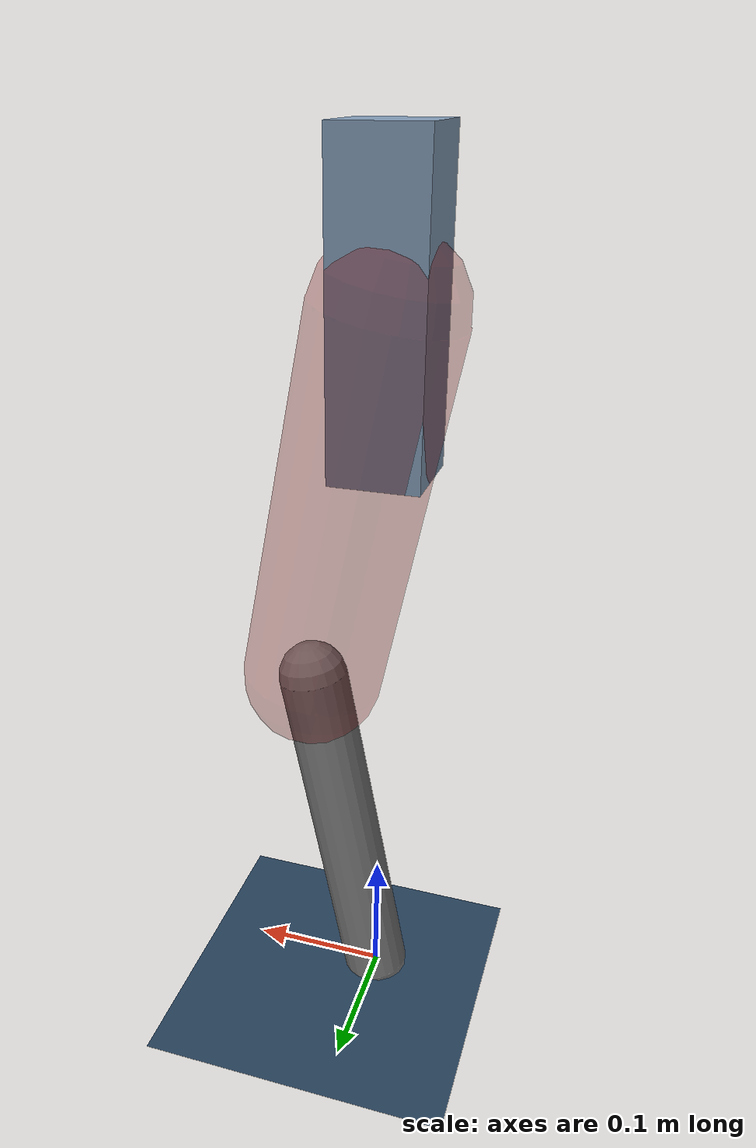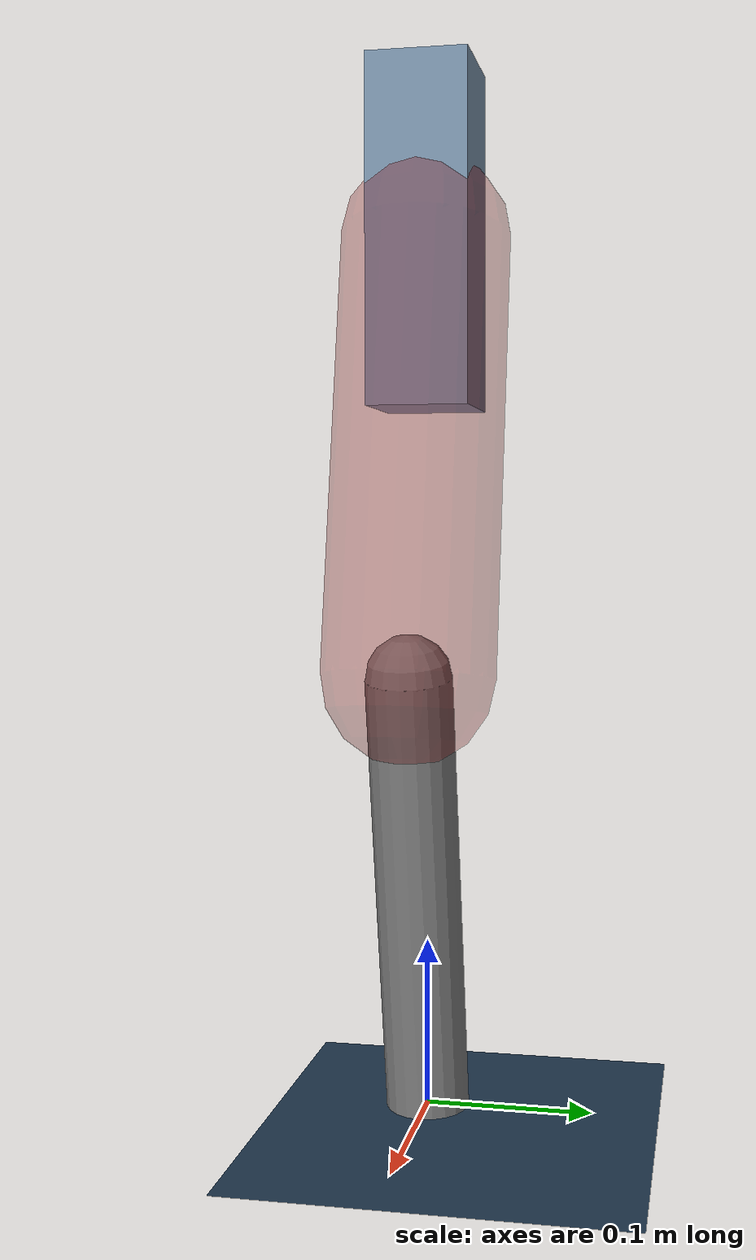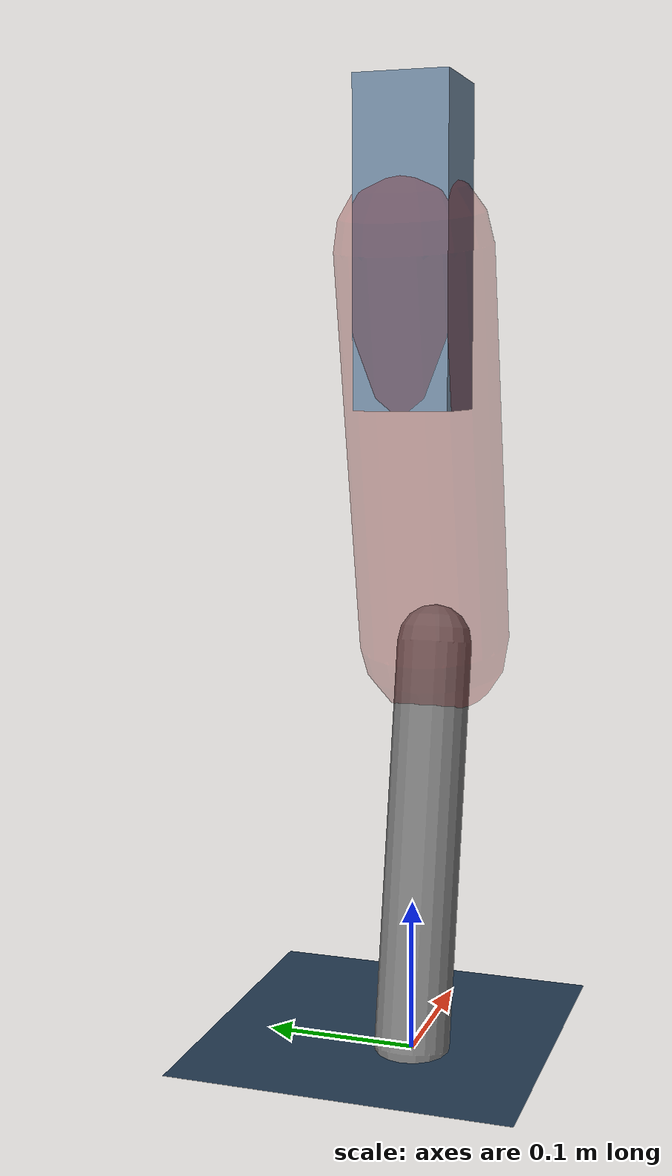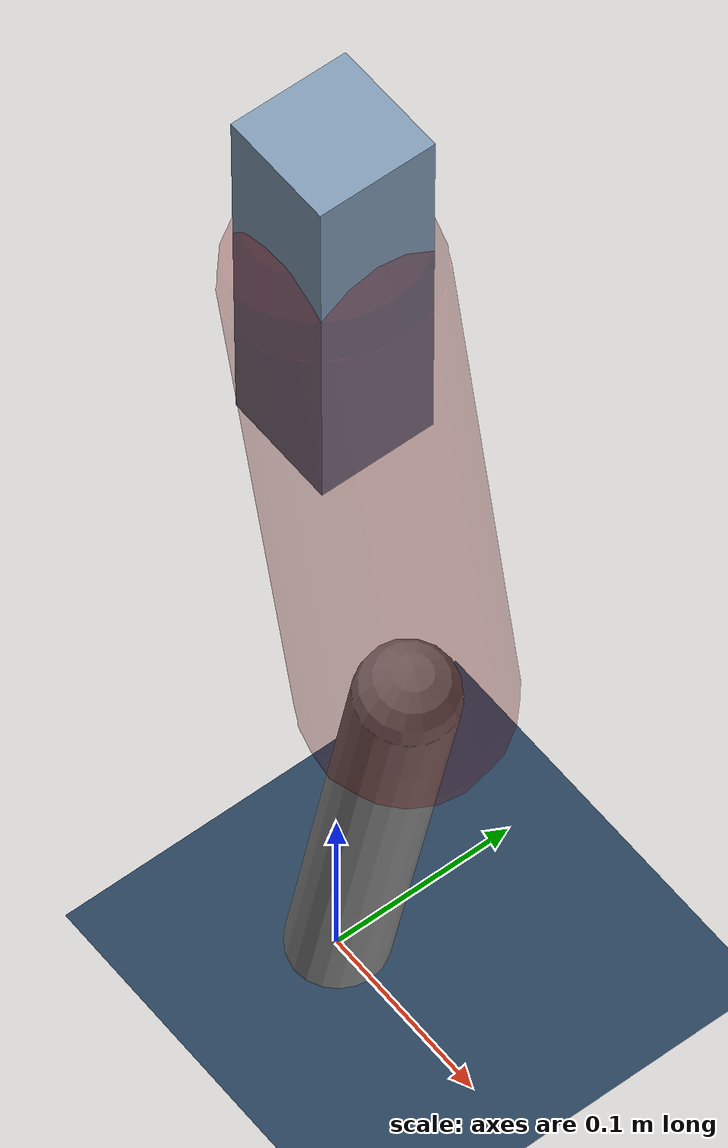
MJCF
<mujoco model="Hopper2D">
	<compiler inertiafromgeom="true" angle="radian" />
	<option timestep="0.001" integrator="implicit" cone="elliptic" solver="Newton" tolerance="1e-10" />

	<default>
		<geom contype="1" conaffinity="1" condim="3" friction="2 0.005 0.0001" solref="0.005 1" />
		<joint limited="true" damping="0.1" />
	</default>

	<asset>
		<texture name="skybox" type="skybox" builtin="gradient" rgb1=".4 .6 .8" rgb2="0 0 0" width="800" height="800" />
		<texture name="grid" type="2d" builtin="checker" rgb1=".1 .2 .3" rgb2=".2 .3 .4" width="300" height="300" mark="edge" markrgb=".2 .3 .4" />
		<material name="ground" texture="grid" texrepeat="1 1" texuniform="true" reflectance="0.1" />
		<material name="leg" rgba="0.5 0.6 0.7 1" />
	</asset>

	<worldbody>

		<geom name="floor" type="plane" size="5 5 0.25" material="ground" />

		<light directional="false" diffuse="0.8 0.8 0.8" specular="0.3 0.3 0.3" pos="0 0 2" dir="0 0 -1" />
		<light mode="targetbodycom" target="base" directional="false" diffuse="0.8 0.8 0.8" specular="0.3 0.3 0.3" pos="0 0 2" dir="0 0 -1" />

		<camera name="fixed" pos="0 -2 1" xyaxes="1 0 0 0 0 1" />
		<camera name="tracking" mode="trackcom" pos="0 -3 1" />

		<body name="root" pos="0 0 0.5202185718419343">
			<joint name="slide_x" type="slide" axis="1 0 0" range="-100 100" />
			<joint name="slide_z" type="slide" axis="0 0 1" range="0 10" />

			<body name="base" pos="0 0 0">
				<geom name="torso" type="box" size="0.03 0.03 0.1" mass="2.1590000000000003" material="leg" />

				<body name="link1" pos="0 0 0" euler="0 1.3727591279732976 0">
					<joint type="hinge" axis="0 -1 0" pos="0 0 0" name="hinge1" limited="true" range="-3.14 3.14" stiffness="0" damping="0.1" />
					<geom name="thigh" type="capsule" fromto="0 0 0 0.2604235477229494 0 0" size="0.05" rgba="0.5 0 0 0.3" mass="0.8835012240796684" />

					<body name="link2" pos="0.2604235477229494 0 0" euler="0 0.3891089187125587 0">
						<joint type="hinge" axis="0 -1 0" pos="0 0 0" name="hinge2" limited="true" range="-3.14 3.14" stiffness="0" damping="0.1" />
						<geom name="shank" type="capsule" fromto="0 0 0 0.26979502411898487 0 0" size="0.025" mass="0.45873601929518787" />

					</body>
				</body>
			</body>
		</body>
	</worldbody>

	<actuator>
		<motor name="torque1" joint="hinge1" ctrlrange="-86.55464239181401 86.55464239181401" ctrllimited="true" gear="1" />
		<motor name="torque2" joint="hinge2" ctrlrange="-88.57066405271026 88.57066405271026" ctrllimited="true" gear="1" />
	</actuator>
</mujoco>
